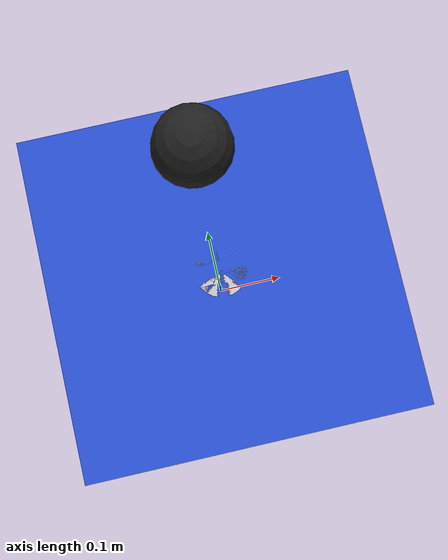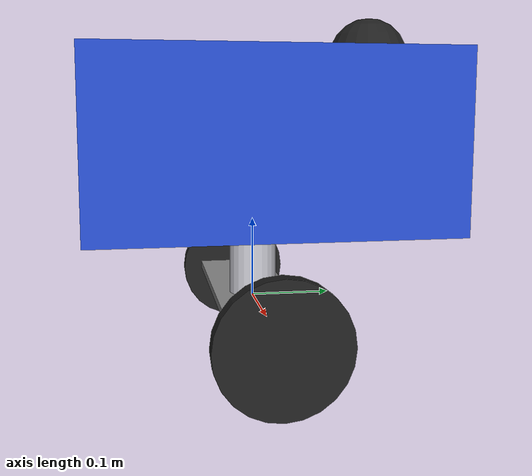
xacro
<robot name="four_wheeled_robot" xmlns:xacro="http://www.ros.org/wiki/xacro">
    <xacro:property name="PI" value="3.14159265359" />

    <!-- Parameters -->
    <xacro:property name="chassis_length" value="0.1" /> <!-- 50 cm -->
    <xacro:property name="chassis_width" value="0.4" />  <!-- 40 cm -->
    <xacro:property name="chassis_height" value="0.01" /> <!-- 10 cm -->

    <xacro:property name="wheel_diameter" value="0.152" /> <!-- 15.2 cm -->
    <xacro:property name="wheel_radius" value="${wheel_diameter / 2}" />
    <xacro:property name="wheel_width" value="0.02" /> <!-- 2 cm -->

    <xacro:property name="caster_radius" value="0.03" /> <!-- 15.2 cm -->

    <xacro:property name="telescopic_rod_min_length" value="0.1" /> <!-- 10 cm -->
    <xacro:property name="telescopic_rod_max_length" value="0.3" /> <!-- 30 cm -->
    <xacro:property name="telescopic_rod_radius" value="0.03" /> <!-- 2 cm -->

    <xacro:property name="body_top_length" value="0.4" /> <!-- 30 cm -->
    <xacro:property name="body_top_width" value="0.4" />  <!-- 30 cm -->
    <xacro:property name="body_top_height" value="0.2" /> <!-- 20 cm -->

    <!-- Base Link -->
    <link name="base_link">
        <visual>
            <geometry>
                <box size="${chassis_width} ${chassis_length} ${chassis_height}" />
            </geometry>
            <material name="gray" />
        </visual>
        <collision>
            <geometry>
                <box size="${chassis_width} ${chassis_length} ${chassis_height}" />
            </geometry>
        </collision>
        <inertial>
            <mass value="10.0" />
            <origin xyz="0 0 0" />
            <inertia ixx="0.1" ixy="0.0" ixz="0.0" iyy="0.1" iyz="0.0" izz="0.1" />
        </inertial>
    </link>

    <!-- Four Wheels -->
    <link name="wheel_left">
        <visual>
            <geometry>
                <cylinder radius="${wheel_radius}" length="${wheel_width}" />
            </geometry>
            <material name="black" />
        </visual>
        <collision>
            <geometry>
                <cylinder radius="${wheel_radius}" length="${wheel_width}" />
            </geometry>
        </collision>
        <inertial>
            <mass value="1.0" />
            <origin xyz="0 0 0" />
            <inertia ixx="0.01" ixy="0.0" ixz="0.0" iyy="0.01" iyz="0.0" izz="0.01" />
        </inertial>
    </link>

    <link name="wheel_right">
        <visual>
            <geometry>
                <cylinder radius="${wheel_radius}" length="${wheel_width}" />
            </geometry>
            <material name="black" />
        </visual>
        <collision>
            <geometry>
                <cylinder radius="${wheel_radius}" length="${wheel_width}" />
            </geometry>
        </collision>
        <inertial>
            <mass value="1.0" />
            <origin xyz="0 0 0" />
            <inertia ixx="0.01" ixy="0.0" ixz="0.0" iyy="0.01" iyz="0.0" izz="0.01" />
        </inertial>
    </link>

    <!-- Joints for Wheels -->
    <joint name="joint_wheel_left" type="continuous">
        <parent link="base_link" />
        <child link="wheel_left" />
        <origin xyz="${-chassis_width/2} 0 -${chassis_height/2}"
            rpy="0 ${-PI/2} 0" />
        <axis xyz="0 0 1" />
    </joint>

    <joint name="joint_wheel_right" type="continuous">
        <parent link="base_link" />
        <child link="wheel_right" />
        <origin xyz="${chassis_width/2} 0 -${chassis_height/2}"
            rpy="0 ${-PI/2} 0" />
        <axis xyz="0 0 1" />
    </joint>

    <link name="caster_forward">
        <collision>
            <origin rpy="0 0 0" xyz="0 0 0" />
            <geometry>
                <sphere radius="${caster_radius}" />
            </geometry>
        </collision>
    </link>

    <link name="caster_backward">
        <collision>
            <origin rpy="0 0 0" xyz="0 0 0" />
            <geometry>
                <sphere radius="${caster_radius}" />
            </geometry>
        </collision>
    </link>

    <joint name="caster_forward_joint" type="fixed">
        <origin
            xyz="0 ${body_top_length/2-caster_radius} ${-chassis_height/2-wheel_radius+caster_radius}"
            rpy="0 0 0" />
        <parent link="base_link" />
        <child link="caster_forward" />
    </joint>

    <joint name="caster_backward_joint" type="fixed">
        <origin
            xyz="0 ${-body_top_length/2+caster_radius} ${-chassis_height/2-wheel_radius+caster_radius}"
            rpy="0 0 0" />
        <parent link="base_link" />
        <child link="caster_backward" />
    </joint>

    <!-- Telescopic Rod -->
    <link name="telescopic_rod">
        <visual>
            <geometry>
                <cylinder radius="${telescopic_rod_radius}" length="${telescopic_rod_max_length}" />
            </geometry>
            <material name="silver" />
        </visual>
        <collision>
            <geometry>
                <cylinder radius="${telescopic_rod_radius}" length="${telescopic_rod_max_length}" />
            </geometry>
        </collision>
        <inertial>
            <mass value="0.5" />
            <origin xyz="0 0 0" />
            <inertia ixx="0.001" ixy="0.0" ixz="0.0" iyy="0.001" iyz="0.0" izz="0.001" />
        </inertial>
    </link>

    <!-- Joint for Telescopic Rod -->
    <joint name="joint_telescopic_rod" type="fixed">
        <parent link="base_link" />
        <child link="telescopic_rod" />
        <origin xyz="0 0 ${(chassis_height+telescopic_rod_max_length)/2}" /> <!-- Attach rod to the top of the base -->
    </joint>

    <!-- Body Link on Top of Telescopic Rod -->
    <link name="body_top">
        <visual>
            <geometry>
                <box size="${body_top_width} ${body_top_length} ${body_top_height}" />
            </geometry>
            <material name="blue" />
        </visual>
        <collision>
            <geometry>
                <box size="${body_top_width} ${body_top_length} ${body_top_height}" />
            </geometry>
        </collision>
        <inertial>
            <mass value="2.0" />
            <origin xyz="0 0 0" />
            <inertia ixx="0.02" ixy="0.0" ixz="0.0" iyy="0.02" iyz="0.0" izz="0.02" />
        </inertial>
    </link>

    <!-- Joint for Body Top -->
    <joint name="joint_body_top" type="prismatic">
        <parent link="telescopic_rod" />
        <child link="body_top" />
        <origin
            xyz="0 0 ${(telescopic_rod_max_length + body_top_height) / 2-(telescopic_rod_max_length-telescopic_rod_min_length)}" /> <!-- Attach body to
        the top of the rod -->
        <axis xyz="0 0 1" />
        <limit lower="0" upper="${telescopic_rod_max_length-telescopic_rod_min_length}"
            effort="10.0" velocity="0.05" /> <!-- 10 cm to 30 cm -->
    </joint>

    <link name="body_top_semantic">
        <visual>
            <geometry>
                <sphere radius="${body_top_width/8}" />
            </geometry>
            <material name="black" />
        </visual>
        <collision>
            <geometry>
                <sphere radius="${body_top_width/8}" />
            </geometry>
        </collision>
    </link>

    <joint name="joint_body_top_semantic" type="fixed">
        <parent link="body_top" />
        <child link="body_top_semantic" />
        <origin
            xyz="0 ${body_top_length/2-body_top_width/8} ${body_top_height/2}" />
    </joint>

    <!-- Transmission for the wheels -->
    <transmission name="trans_wheel_left">
        <type>transmission_interface/SimpleTransmission</type>
        <joint name="joint_wheel_left">
            <hardwareInterface>hardware_interface/VelocityJointInterface</hardwareInterface>
        </joint>
        <actuator name="actuator_wheel_left">
            <mechanicalReduction>1</mechanicalReduction>
        </actuator>
    </transmission>

    <transmission name="trans_wheel_right">
        <type>transmission_interface/SimpleTransmission</type>
        <joint name="joint_wheel_right">
            <hardwareInterface>hardware_interface/VelocityJointInterface</hardwareInterface>
        </joint>
        <actuator name="actuator_wheel_right">
            <mechanicalReduction>1</mechanicalReduction>
        </actuator>
    </transmission>

    <!-- Gazebo plugin for differential drive control -->
    <gazebo>
        <plugin name="gazebo_ros_diff_drive" filename="libgazebo_ros_diff_drive.so">
            <ros>
                <namespace>/my_robot</namespace>
                <remapping>cmd_vel:=cmd_vel</remapping>
            </ros>
            <updateRate>50</updateRate>
            <leftJoint>joint_wheel_left</leftJoint>
            <rightJoint>joint_wheel_right</rightJoint>
            <wheelSeparation>${chassis_width}</wheelSeparation>
            <wheelDiameter>${wheel_diameter}</wheelDiameter>
            <torque>5</torque>
        </plugin>
    </gazebo>

    <gazebo reference="base_link">
        <material>Gazebo/Grey</material>
    </gazebo>
    <gazebo reference="wheel_left">
        <material>Gazebo/DarkGrey</material>
    </gazebo>
    <gazebo reference="wheel_right">
        <material>Gazebo/DarkGrey</material>
    </gazebo>
    <gazebo reference="telescopic_rod">
        <material>Gazebo/White</material>
    </gazebo>
    <gazebo reference="body_top">
        <material>Gazebo/DarkYellow </material>
    </gazebo>
    <gazebo reference="body_top_semantic">
        <material>Gazebo/FlatBlack</material>
    </gazebo>

    <gazebo reference="caster_forward">
        <mu1 value="0.0" />
        <mu2 value="0.0" />
    </gazebo>
    <gazebo reference="caster_backward">
        <mu1 value="0.0" />
        <mu2 value="0.0" />
    </gazebo>
</robot>
